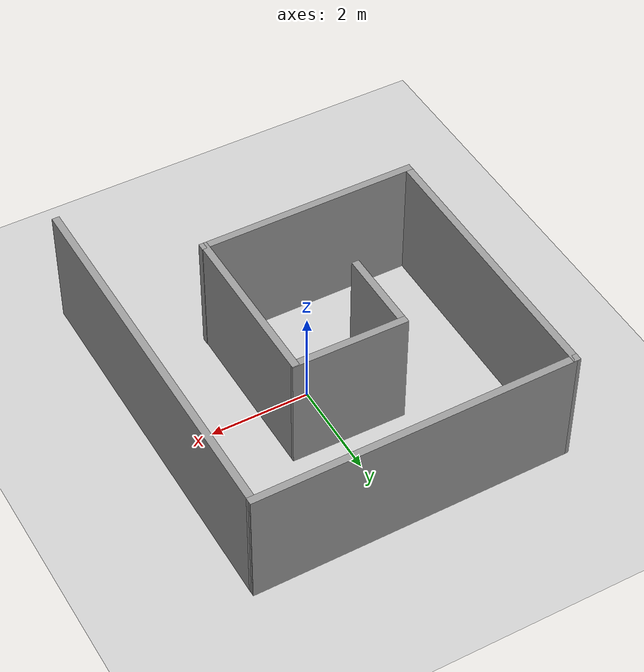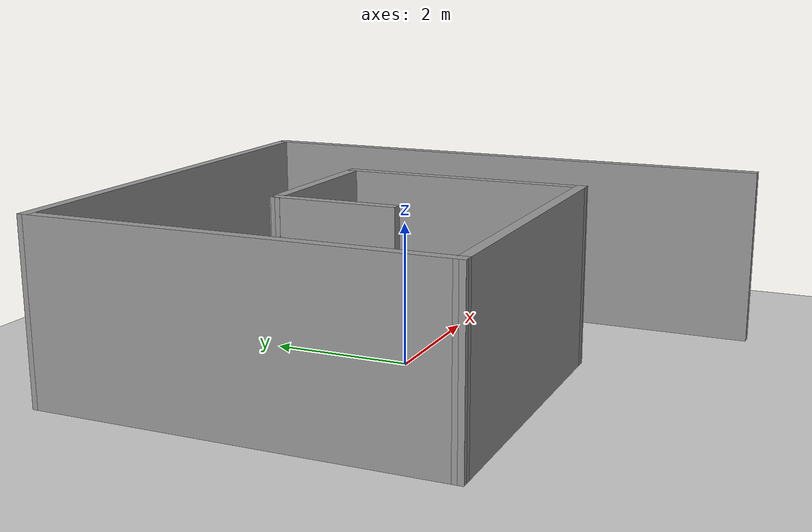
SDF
<sdf version="1.7">
 <world name="default">
  <light name="sun" type="directional">
   <pose>0 0 10 0 -0 0</pose>
   <diffuse>0.8 0.8 0.8 1</diffuse>
   <specular>0.2 0.2 0.2 1</specular>
   <attenuation>
    <range>1000</range>
    <constant>0.9</constant>
    <linear>0.01</linear>
    <quadratic>0.001</quadratic>
   </attenuation>
   <direction>-0.5 0.1 -0.9</direction>
   <spot><inner_angle>0</inner_angle><outer_angle>0</outer_angle><falloff>0</falloff></spot>
  </light>
  <model name="ground_plane">
   <static>1</static>
   <link name="link">
    <collision name="collision">
     <geometry><plane><normal>0 0 1</normal><size>100 100</size></plane></geometry>
     <surface>
      <contact><collide_bitmask>65535</collide_bitmask></contact>
      <friction><ode><mu>100</mu><mu2>50</mu2></ode></friction>
     </surface>
    </collision>
    <visual name="visual">
     <cast_shadows>0</cast_shadows>
     <geometry><plane><normal>0 0 1</normal><size>100 100</size></plane></geometry>
     <material>
      <script><uri>file://media/materials/scripts/gazebo.material</uri><name>Gazebo/Grey</name></script>
     </material>
    </visual>
   </link>
  </model>
  <gravity>0 0 -9.8</gravity>
  <magnetic_field>6e-06 2.3e-05 -4.2e-05</magnetic_field>
  <atmosphere type="adiabatic"/>
  <physics type="ode">
   <max_step_size>0.001</max_step_size>
   <real_time_factor>1</real_time_factor>
   <real_time_update_rate>1000</real_time_update_rate>
  </physics>
  <scene><ambient>0.4 0.4 0.4 1</ambient><background>0.7 0.7 0.7 1</background><shadows>1</shadows></scene>
  <audio><device>default</device></audio>
  <spherical_coordinates>
   <surface_model>EARTH_WGS84</surface_model>
   <latitude_deg>0</latitude_deg>
   <longitude_deg>0</longitude_deg>
   <elevation>0</elevation>
   <heading_deg>0</heading_deg>
  </spherical_coordinates>
  <model name="maze">
   <pose>-0.198031 -0.283439 0 0 -0 0</pose>
   <link name="Wall_0">
    <collision name="Wall_0_Collision">
     <geometry><box><size>2.34028 0.15 2.5</size></box></geometry>
     <pose>0 0 1.25 0 -0 0</pose>
    </collision>
    <visual name="Wall_0_Visual">
     <pose>0 0 1.25 0 -0 0</pose>
     <geometry><box><size>2.34028 0.15 2.5</size></box></geometry>
     <material>
      <script><uri>file://media/materials/scripts/gazebo.material</uri><name>Gazebo/Grey</name></script>
      <ambient>1 1 1 1</ambient>
     </material>
     <meta><layer>0</layer></meta>
    </visual>
    <pose>0.036877 1.51325 0 0 -0 3.13192</pose>
   </link>
   <link name="Wall_2">
    <collision name="Wall_2_Collision">
     <geometry><box><size>1.75 0.15 2.5</size></box></geometry>
     <pose>0 0 1.25 0 -0 0</pose>
    </collision>
    <visual name="Wall_2_Visual">
     <pose>0 0 1.25 0 -0 0</pose>
     <geometry><box><size>1.75 0.15 2.5</size></box></geometry>
     <material>
      <script><uri>file://media/materials/scripts/gazebo.material</uri><name>Gazebo/Grey</name></script>
      <ambient>1 1 1 1</ambient>
     </material>
     <meta><layer>0</layer></meta>
    </visual>
    <pose>-1.05826 0.70659 0 0 -0 -1.5708</pose>
   </link>
   <link name="Wall_4">
    <collision name="Wall_4_Collision">
     <geometry><box><size>3.51017 0.15 2.5</size></box></geometry>
     <pose>0 0 1.25 0 -0 0</pose>
    </collision>
    <visual name="Wall_4_Visual">
     <pose>0 0 1.25 0 -0 0</pose>
     <geometry><box><size>3.51017 0.15 2.5</size></box></geometry>
     <material>
      <script><uri>file://media/materials/scripts/gazebo.material</uri><name>Gazebo/Grey</name></script>
      <ambient>1 1 1 1</ambient>
     </material>
     <meta><layer>0</layer></meta>
    </visual>
    <pose>1.13475 -0.194608 0 0 -0 -1.56917</pose>
   </link>
   <link name="Wall_6">
    <collision name="Wall_6_Collision">
     <geometry><box><size>4.5 0.15 2.5</size></box></geometry>
     <pose>0 0 1.25 0 -0 0</pose>
    </collision>
    <visual name="Wall_6_Visual">
     <pose>0 0 1.25 0 -0 0</pose>
     <geometry><box><size>4.5 0.15 2.5</size></box></geometry>
     <material>
      <script><uri>file://media/materials/scripts/gazebo.material</uri><name>Gazebo/Grey</name></script>
      <ambient>1 1 1 1</ambient>
     </material>
     <meta><layer>0</layer></meta>
    </visual>
    <pose>-1.02894 -1.87462 0 0 -0 3.14159</pose>
   </link>
   <link name="Wall_7">
    <collision name="Wall_7_Collision">
     <geometry><box><size>5.79359 0.15 2.5</size></box></geometry>
     <pose>0 0 1.25 0 -0 0</pose>
    </collision>
    <visual name="Wall_7_Visual">
     <pose>0 0 1.25 0 -0 0</pose>
     <geometry><box><size>5.79359 0.15 2.5</size></box></geometry>
     <material>
      <script><uri>file://media/materials/scripts/gazebo.material</uri><name>Gazebo/Grey</name></script>
      <ambient>1 1 1 1</ambient>
     </material>
     <meta><layer>0</layer></meta>
    </visual>
    <pose>-3.19798 0.947167 0 0 -0 1.56868</pose>
   </link>
   <link name="Wall_8">
    <collision name="Wall_8_Collision">
     <geometry><box><size>6.54577 0.15 2.5</size></box></geometry>
     <pose>0 0 1.25 0 -0 0</pose>
    </collision>
    <visual name="Wall_8_Visual">
     <pose>0 0 1.25 0 -0 0</pose>
     <geometry><box><size>6.54577 0.15 2.5</size></box></geometry>
     <material>
      <script><uri>file://media/materials/scripts/gazebo.material</uri><name>Gazebo/Grey</name></script>
      <ambient>1 1 1 1</ambient>
     </material>
     <meta><layer>0</layer></meta>
    </visual>
    <pose>0.005795 3.79006 0 0 -0 0.006599</pose>
   </link>
   <link name="Wall_9">
    <collision name="Wall_9_Collision">
     <geometry><box><size>7.75 0.15 2.5</size></box></geometry>
     <pose>0 0 1.25 0 -0 0</pose>
    </collision>
    <visual name="Wall_9_Visual">
     <pose>0 0 1.25 0 -0 0</pose>
     <geometry><box><size>7.75 0.15 2.5</size></box></geometry>
     <material>
      <script><uri>file://media/materials/scripts/gazebo.material</uri><name>Gazebo/Grey</name></script>
      <ambient>1 1 1 1</ambient>
     </material>
     <meta><layer>0</layer></meta>
    </visual>
    <pose>3.20361 -0.011653 0 0 -0 -1.5708</pose>
   </link>
   <static>1</static>
  </model>
 </world>
</sdf>
